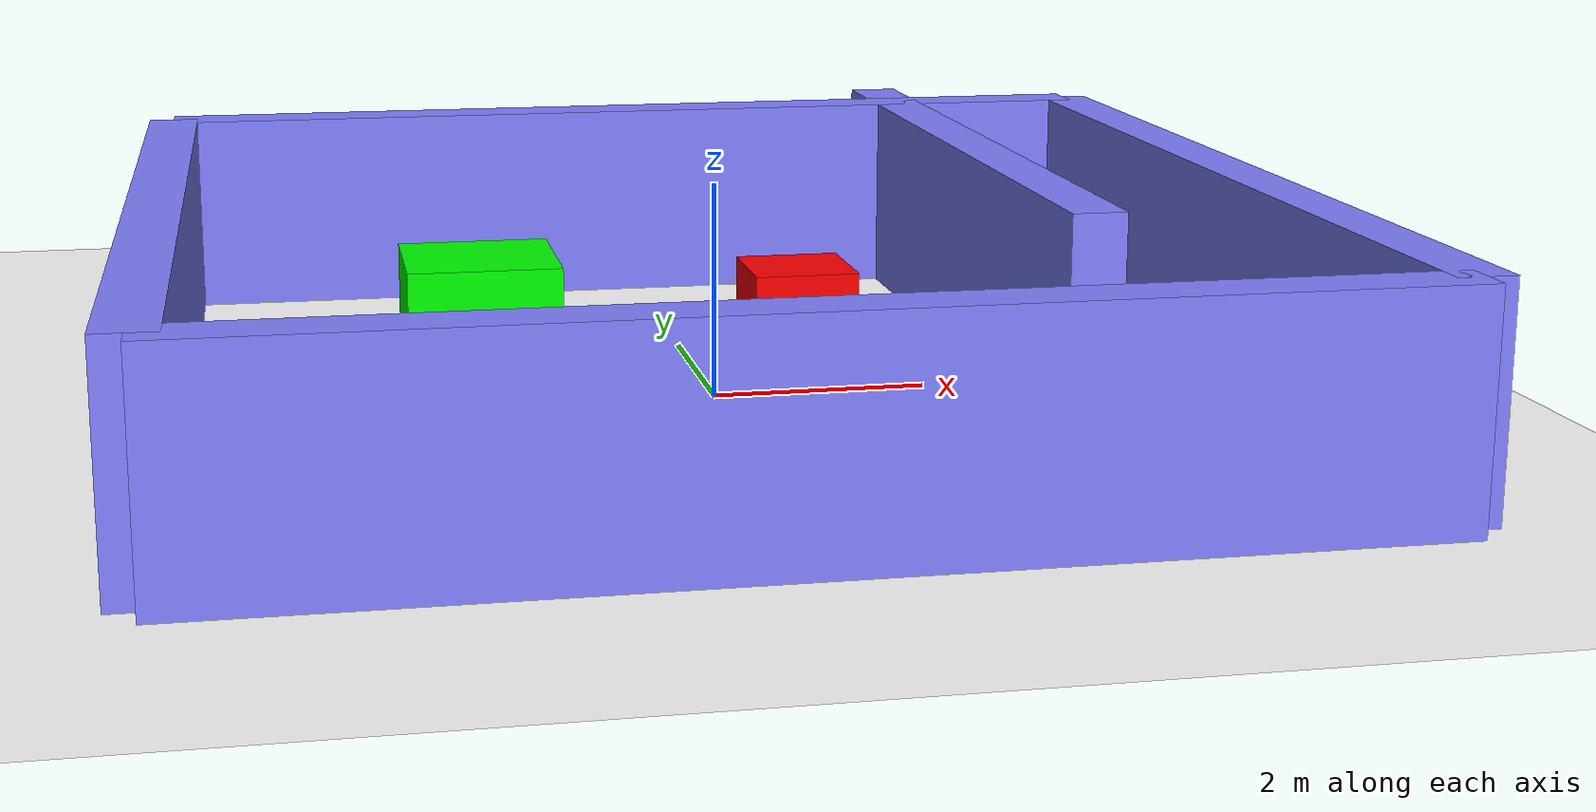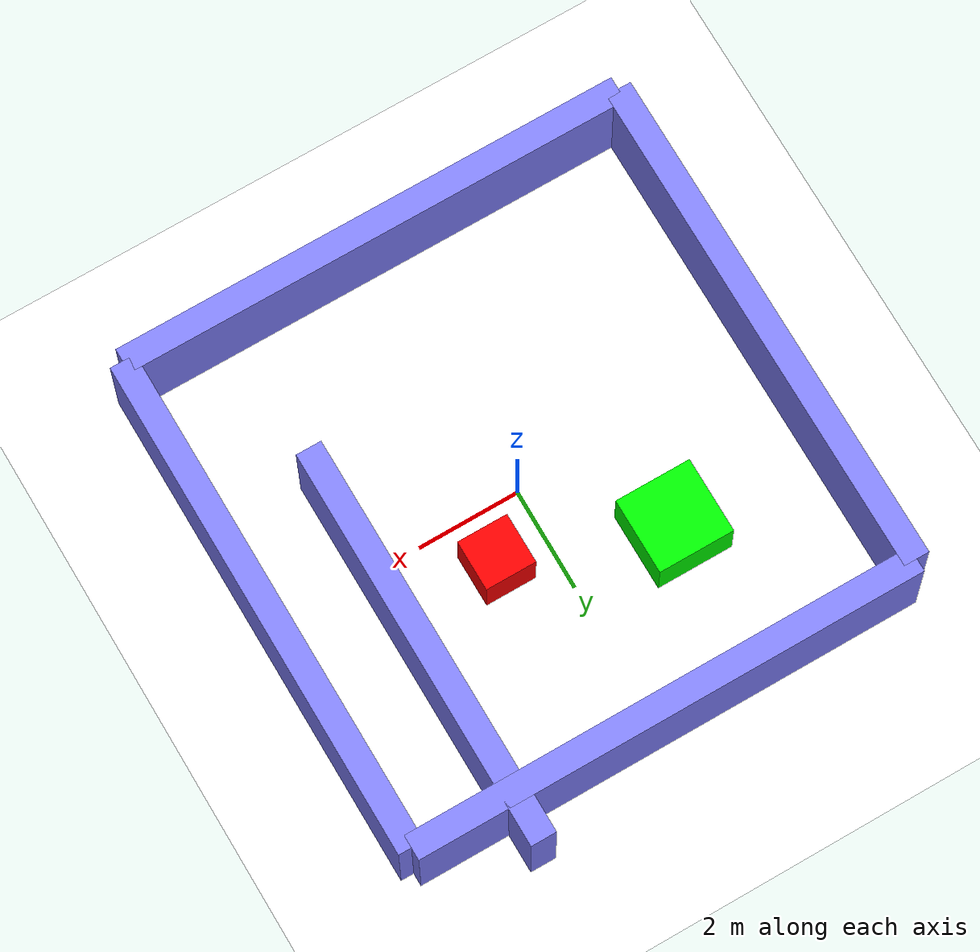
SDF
<?xml version="1.0"?>
<sdf version="1.8">
  <world name="demo">
    <plugin filename="gz-sim-physics-system" name="gz::sim::systems::Physics" />
    <plugin filename="gz-sim-sensors-system" name="gz::sim::systems::Sensors">
      <render_engine>ogre2</render_engine>
    </plugin>
    <plugin filename="gz-sim-scene-broadcaster-system" name="gz::sim::systems::SceneBroadcaster" />
    <plugin filename="gz-sim-user-commands-system" name="gz::sim::systems::UserCommands" />

    <light name="sun" type="directional">
      <pose>0 0 10 0 0 0</pose>
      <diffuse>0.8 0.8 0.8 1</diffuse>
      <direction>-0.5 0.1 -0.9</direction>
    </light>

    <model name="ground_plane">
      <static>true</static>
      <link name="link">
        <collision name="collision">
          <geometry>
            <plane>
              <normal>0 0 1</normal>
              <size>10 10</size>
            </plane>
          </geometry>
        </collision>
        <visual name="visual">
          <geometry>
            <plane>
              <normal>0 0 1</normal>
              <size>10 10</size>
            </plane>
          </geometry>
          <material>
            <ambient>1 1 1 1</ambient>
            <diffuse>1 1 1 1</diffuse>
          </material>
        </visual>
      </link>
    </model>

    <!-- Walls -->
    <model name="wall_north">
      <static>true</static>
      <pose>0 5 1 0 0 0</pose>
      <link name="link">
        <collision name="collision">
          <geometry>
            <box>
              <size>10 0.5 2</size>
            </box>
          </geometry>
        </collision>
        <visual name="visual">
          <geometry>
            <box>
              <size>10 0.5 2</size>
            </box>
          </geometry>
          <material>
            <ambient>0.5 0.5 1 1</ambient>
            <diffuse>0.5 0.5 1 1</diffuse>
          </material>
        </visual>
      </link>
    </model>

    <model name="wall_south">
      <static>true</static>
      <pose>0 -5 1 0 0 0</pose>
      <link name="link">
        <collision name="collision">
          <geometry>
            <box>
              <size>10 0.5 2</size>
            </box>
          </geometry>
        </collision>
        <visual name="visual">
          <geometry>
            <box>
              <size>10 0.5 2</size>
            </box>
          </geometry>
          <material>
            <ambient>0.5 0.5 1 1</ambient>
            <diffuse>0.5 0.5 1 1</diffuse>
          </material>
        </visual>
      </link>
    </model>

    <model name="wall_east">
      <static>true</static>
      <pose>5 0 1 0 0 0</pose>
      <link name="link">
        <collision name="collision">
          <geometry>
            <box>
              <size>0.5 10 2</size>
            </box>
          </geometry>
        </collision>
        <visual name="visual">
          <geometry>
            <box>
              <size>0.5 10 2</size>
            </box>
          </geometry>
          <material>
            <ambient>0.5 0.5 1 1</ambient>
            <diffuse>0.5 0.5 1 1</diffuse>
          </material>
        </visual>
      </link>
    </model>

    <model name="wall_west">
      <static>true</static>
      <pose>-5 0 1 0 0 0</pose>
      <link name="link">
        <collision name="collision">
          <geometry>
            <box>
              <size>0.5 10 2</size>
            </box>
          </geometry>
        </collision>
        <visual name="visual">
          <geometry>
            <box>
              <size>0.5 10 2</size>
            </box>
          </geometry>
          <material>
            <ambient>0.5 0.5 1 1</ambient>
            <diffuse>0.5 0.5 1 1</diffuse>
          </material>
        </visual>
      </link>
    </model>

    <!-- Hallway wall -->
    <model name="wall_hallway">
      <static>true</static>
      <pose>3 2 1 0 0 0</pose>
      <link name="link">
        <collision name="collision">
          <geometry>
            <box>
              <size>0.5 8 2</size>
            </box>
          </geometry>
        </collision>
        <visual name="visual">
          <geometry>
            <box>
              <size>0.5 8 2</size>
            </box>
          </geometry>
          <material>
            <ambient>0.5 0.5 1 1</ambient>
            <diffuse>0.5 0.5 1 1</diffuse>
          </material>
        </visual>
      </link>
    </model>

    <!-- Obstacles -->
    <model name="box1">
      <pose>1 1 0.5 0 0 0</pose>
      <link name="link">
        <collision name="collision">
          <geometry>
            <box>
              <size>1 1 1</size>
            </box>
          </geometry>
        </collision>
        <visual name="visual">
          <geometry>
            <box>
              <size>1 1 1</size>
            </box>
          </geometry>
          <material>
            <ambient>1 0 0 1</ambient>
            <diffuse>1 0 0 1</diffuse>
          </material>
        </visual>
      </link>
    </model>

    <model name="box2">
      <pose>-2 2 0.5 0 0 0</pose>
      <link name="link">
        <collision name="collision">
          <geometry>
            <box>
              <size>1.5 1.5 1</size>
            </box>
          </geometry>
        </collision>
        <visual name="visual">
          <geometry>
            <box>
              <size>1.5 1.5 1</size>
            </box>
          </geometry>
          <material>
            <ambient>0 1 0 1</ambient>
            <diffuse>0 1 0 1</diffuse>
          </material>
        </visual>
      </link>
    </model>
  </world>
</sdf>
